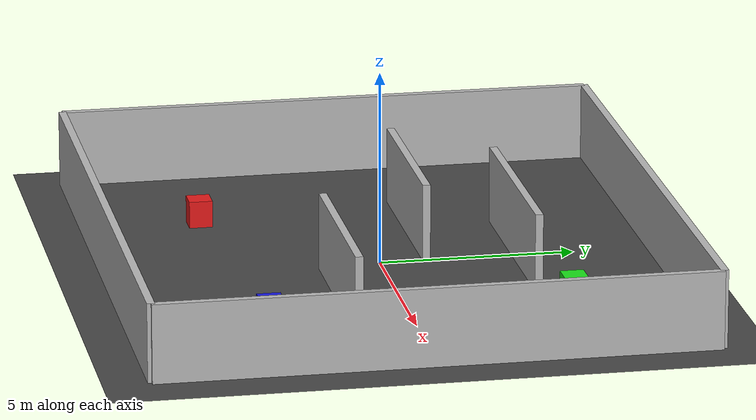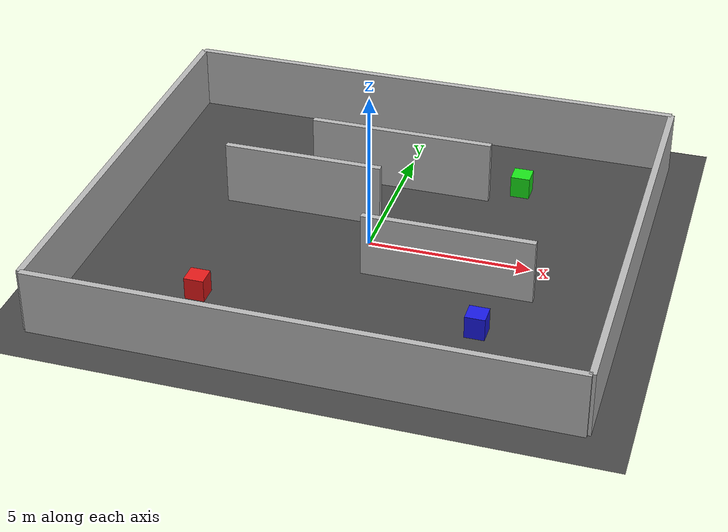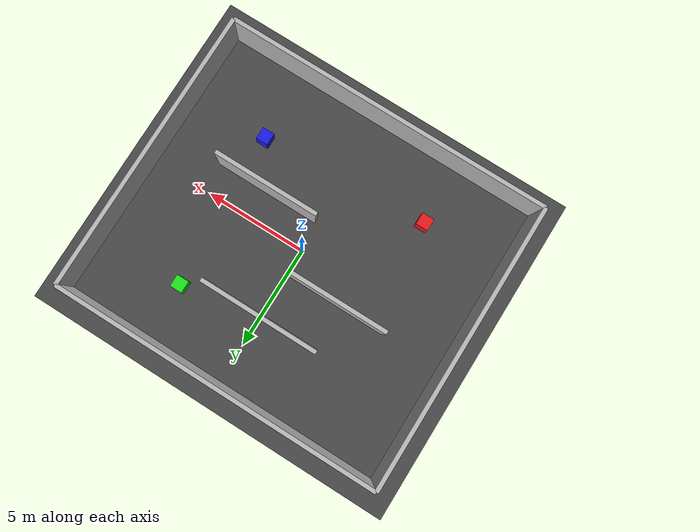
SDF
<sdf version="1.8">
 <world name="default">
  <plugin filename="gz-sim-physics-system" name="gz::sim::systems::Physics"/>
  <plugin filename="gz-sim-user-commands-system" name="gz::sim::systems::UserCommands"/>
  <plugin filename="gz-sim-scene-broadcaster-system" name="gz::sim::systems::SceneBroadcaster"/>
  <plugin filename="gz-sim-sensors-system" name="gz::sim::systems::Sensors">
   <render_engine>ogre2</render_engine>
  </plugin>
  <scene><ambient>0.7 0.7 0.7 1</ambient><background>0.82 0.82 0.82 1</background></scene>
  <model name="ground_plane">
   <static>true</static>
   <link name="ground_link">
    <collision name="ground_collision">
     <geometry><plane><normal>0 0 1</normal><size>120 120</size></plane></geometry>
    </collision>
    <visual name="ground_visual">
     <geometry><plane><normal>0 0 1</normal><size>120 120</size></plane></geometry>
     <material><ambient>0.25 0.25 0.25 1</ambient><diffuse>0.28 0.28 0.28 1</diffuse></material>
    </visual>
   </link>
  </model>
  <model name="wall_north">
   <static>true</static>
   <pose>0 7.0 1.0 0 0 0</pose>
   <link name="link">
    <collision name="collision"><geometry><box><size>16.0 0.2 2.0</size></box></geometry></collision>
    <visual name="visual"><geometry><box><size>16.0 0.2 2.0</size></box></geometry></visual>
   </link>
  </model>
  <model name="wall_south">
   <static>true</static>
   <pose>0 -7.0 1.0 0 0 0</pose>
   <link name="link">
    <collision name="collision"><geometry><box><size>16.0 0.2 2.0</size></box></geometry></collision>
    <visual name="visual"><geometry><box><size>16.0 0.2 2.0</size></box></geometry></visual>
   </link>
  </model>
  <model name="wall_east">
   <static>true</static>
   <pose>8.0 0 1.0 0 0 0</pose>
   <link name="link">
    <collision name="collision"><geometry><box><size>0.2 14.0 2.0</size></box></geometry></collision>
    <visual name="visual"><geometry><box><size>0.2 14.0 2.0</size></box></geometry></visual>
   </link>
  </model>
  <model name="wall_west">
   <static>true</static>
   <pose>-8.0 0 1.0 0 0 0</pose>
   <link name="link">
    <collision name="collision"><geometry><box><size>0.2 14.0 2.0</size></box></geometry></collision>
    <visual name="visual"><geometry><box><size>0.2 14.0 2.0</size></box></geometry></visual>
   </link>
  </model>
  <model name="wall_room_1">
   <static>true</static>
   <pose>-2.5 1.2 1.0 0 0 0</pose>
   <link name="link">
    <collision name="collision"><geometry><box><size>5.0 0.2 2.0</size></box></geometry></collision>
    <visual name="visual"><geometry><box><size>5.0 0.2 2.0</size></box></geometry></visual>
   </link>
  </model>
  <model name="wall_room_2">
   <static>true</static>
   <pose>2.8 -1.5 1.0 0 0 0</pose>
   <link name="link">
    <collision name="collision"><geometry><box><size>5.2 0.2 2.0</size></box></geometry></collision>
    <visual name="visual"><geometry><box><size>5.2 0.2 2.0</size></box></geometry></visual>
   </link>
  </model>
  <model name="wall_room_3">
   <static>true</static>
   <pose>0.0 3.5 1.0 0 0 1.5708</pose>
   <link name="link">
    <collision name="collision"><geometry><box><size>0.2 5.8 2.0</size></box></geometry></collision>
    <visual name="visual"><geometry><box><size>0.2 5.8 2.0</size></box></geometry></visual>
   </link>
  </model>
  <model name="object_red_cube">
   <static>true</static>
   <pose>-4.0 -4.0 0.35 0 0 0</pose>
   <link name="link">
    <collision name="collision"><geometry><box><size>0.6 0.6 0.7</size></box></geometry></collision>
    <visual name="visual">
     <geometry><box><size>0.6 0.6 0.7</size></box></geometry>
     <material><ambient>0.8 0.1 0.1 1</ambient><diffuse>0.9 0.1 0.1 1</diffuse></material>
    </visual>
   </link>
  </model>
  <model name="object_green_cube">
   <static>true</static>
   <pose>3.8 4.2 0.35 0 0 0</pose>
   <link name="link">
    <collision name="collision"><geometry><box><size>0.6 0.6 0.7</size></box></geometry></collision>
    <visual name="visual">
     <geometry><box><size>0.6 0.6 0.7</size></box></geometry>
     <material><ambient>0.1 0.8 0.1 1</ambient><diffuse>0.1 0.9 0.1 1</diffuse></material>
    </visual>
   </link>
  </model>
  <model name="object_blue_cube">
   <static>true</static>
   <pose>4.2 -3.5 0.35 0 0 0</pose>
   <link name="link">
    <collision name="collision"><geometry><box><size>0.6 0.6 0.7</size></box></geometry></collision>
    <visual name="visual">
     <geometry><box><size>0.6 0.6 0.7</size></box></geometry>
     <material><ambient>0.1 0.1 0.8 1</ambient><diffuse>0.1 0.1 0.9 1</diffuse></material>
    </visual>
   </link>
  </model>
  <light name="sun" type="directional">
   <pose>0 0 12 0 0 0</pose>
   <direction>-0.3 0.2 -1</direction>
   <diffuse>1 1 1 1</diffuse>
   <specular>0.2 0.2 0.2 1</specular>
  </light>
 </world>
</sdf>
